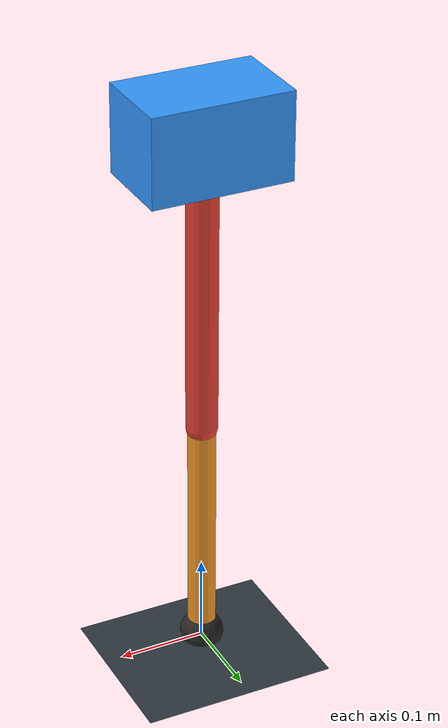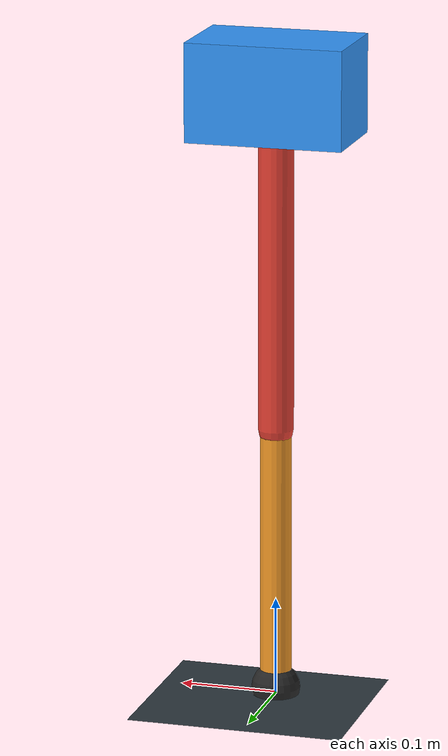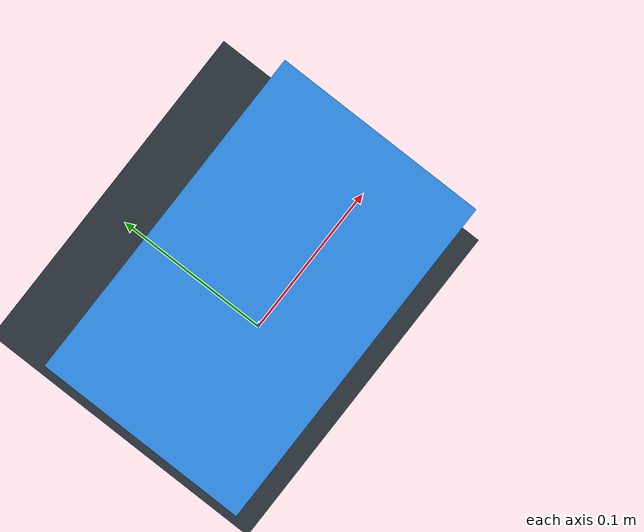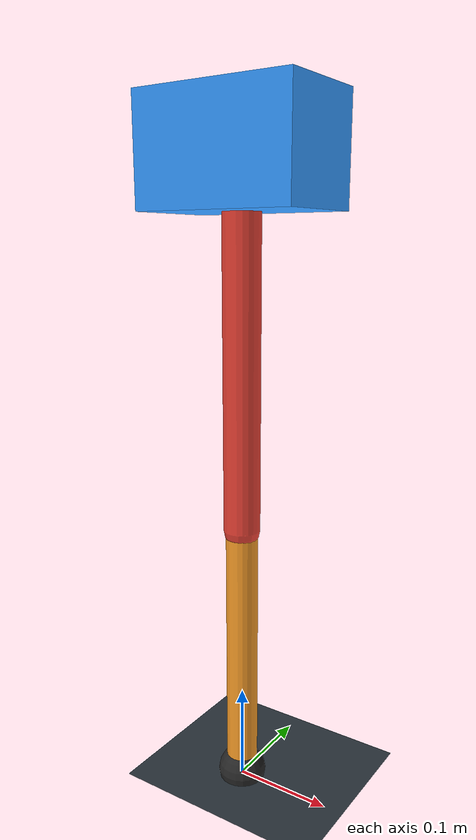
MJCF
<mujoco model="single_axis_two_bar">
  <compiler angle="radian" inertiafromgeom="true"/>
  <option timestep="0.001" integrator="implicitfast" gravity="0 0 -9.81"/>
  <default>
    <joint damping="0.08"/>
    <geom friction="1.2 0.01 0.0001" condim="3"/>
  </default>
  <worldbody>
    <geom name="floor" type="plane" size="5 5 0.1" rgba="0.18 0.22 0.25 1"/>
    <body name="carriage" pos="0 0 0.6293785607748144">
      <joint name="pole_slide" type="slide" axis="0 0 1"/>
      <geom name="payload" type="box" size="0.08 0.05 0.05" mass="3.320261994672015" rgba="0.2 0.6 1 1"/>
      <body name="thigh" pos="0 0 0">
        <joint name="hip" type="hinge" axis="0 1 0"/>
        <geom name="thigh_link" type="capsule" fromto="0 0 0 0 0 -0.34959540611303186" size="0.018" mass="0.24909134635125643" rgba="0.9 0.25 0.2 1"/>
        <body name="shank" pos="0 0 -0.34959540611303186">
          <joint name="knee" type="hinge" axis="0 1 0"/>
          <geom name="shank_link" type="capsule" fromto="0 0 0 0 0 -0.273475275098117" size="0.016" mass="0.1948547471643417" rgba="0.95 0.6 0.15 1"/>
          <geom name="foot" type="sphere" pos="0 0 -0.273475275098117" size="0.025" mass="0.03" rgba="0.15 0.15 0.15 1"/>
          <site name="toe" pos="0 0 -0.273475275098117" size="0.008"/>
        </body>
      </body>
    </body>
  </worldbody>
  <actuator>
    <motor name="hip_motor" joint="hip" ctrlrange="-36.30567675429842 36.30567675429842"/>
    <motor name="knee_motor" joint="knee" ctrlrange="-154.14450652953482 154.14450652953482"/>
  </actuator>
</mujoco>
